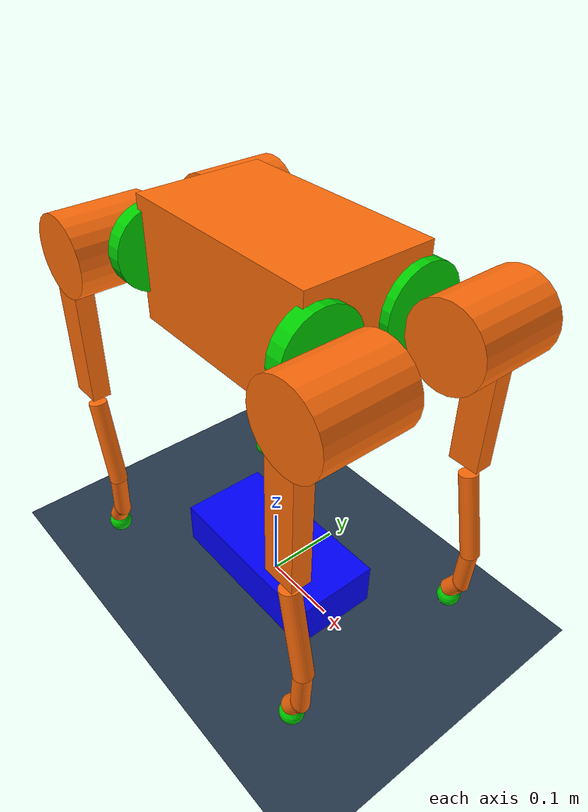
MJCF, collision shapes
<mujoco model="Creeper">
  <compiler angle="radian" meshdir="../meshes/"/>

  <asset>
    <texture type="skybox" builtin="gradient" rgb1="0.3 0.5 0.7" rgb2="0 0 0" width="512" height="512" />
    <texture name="texplane" type="2d" builtin="checker" rgb1=".2 .3 .4" rgb2=".1 0.15 0.2" width="512" height="512" mark="cross" markrgb=".8 .8 .8" />
    <material name="matplane" reflectance="0.3" texture="texplane" texrepeat="1 1" texuniform="true" />
    <mesh name="base" file="base.stl"/>
    <mesh name="FL_hip" file="FL_hip.stl"/>
    <mesh name="FR_hip" file="FR_hip.stl"/>
    <mesh name="RL_hip" file="RL_hip.stl"/>
    <mesh name="RR_hip" file="RR_hip.stl"/>
    <mesh name="FL_thigh" file="FL_thigh.stl"/>
    <mesh name="FR_thigh" file="FR_thigh.stl"/>
    <mesh name="RL_thigh" file="RL_thigh.stl"/>
    <mesh name="RR_thigh" file="RR_thigh.stl"/>
    <mesh name="FL_calf" file="FL_calf.stl"/>
    <mesh name="FR_calf" file="FR_calf.stl"/>
    <mesh name="RL_calf" file="RL_calf.stl"/>
    <mesh name="RR_calf" file="RR_calf.stl"/>
  </asset>

  <worldbody>
    <light directional="true" diffuse=".4 .4 .4" specular="0.1 0.1 0.1" pos="0 0 5.0" dir="0 0 -1" castshadow="false" />
    <light directional="true" diffuse=".6 .6 .6" specular="0.2 0.2 0.2" pos="0 0 4" dir="0 0 -1" />
    <geom name="floor" pos="0 0 0" size="15 15 1" type="plane" material="matplane" margin="0.001" condim="3" friction="1 0.005 0.0001" />
    <!-- floor box under COM to prevent body from lying completely flat -->
    <geom type="box" size="0.12 0.06 0.03" pos="0 0 0.03" group="0" rgba="0 0 1 0.5" solref="0.05 0.9" solimp="0.7 0.9 0.005" margin="0.002"/>

    <body name="trunk" pos="0 0 0.455">
      <site name="imu_sensor_site" pos="0 0 0" />
      <inertial pos="-0.000212244 3.881e-05 -0.020479" quat="1 0 0 0" mass="6" diaginertia="0.011597 0.012694 0.017601"/>
      <joint name="floating_base" type="free" limited="false" actuatorfrclimited="false"/>
      <geom type="mesh" mesh="base" pos="0 0 0" quat="1 0 0 0" contype="0" conaffinity="0" group="1" density="0"/>
      <!-- base primitives: collision box is 270x160x150mm -->
      <geom type="box" size="0.135 0.08 0.075" pos="0 0 -0.01" group="3" rgba="1 0.424 0.039 0.5"/>
      <geom size="0.05 0.01" pos="0.13638 0.065071 0" quat="0.707107 0 0.707107 0" type="cylinder" contype="0" conaffinity="0" group="1" density="0" rgba="0 0.8 0 1"/>
      <geom size="0.05 0.01" pos="0.13638 -0.064929 0" quat="0.707107 0 0.707107 0" type="cylinder" contype="0" conaffinity="0" group="1" density="0" rgba="0 0.8 0 1"/>
      <geom size="0.05 0.01" pos="-0.13682 0.065071 0" quat="0.707107 0 0.707107 0" type="cylinder" contype="0" conaffinity="0" group="1" density="0" rgba="0 0.8 0 1"/>
      <geom size="0.05 0.01" pos="-0.13682 -0.064929 0" quat="0.707107 0 0.707107 0" type="cylinder" contype="0" conaffinity="0" group="1" density="0" rgba="0 0.8 0 1"/>

      <!-- FL (Front-Left) leg -->
      <body name="FL_hip" pos="0.13638 0.065071 -0.01">
        <inertial pos="0.038938 -0.0076948 -6.1766e-05" quat="0.723979 0.0011812 0.000761851 0.689821" mass="0.41199" diaginertia="0.000487082 0.000366209 0.000242969"/>
        <joint name="LF_HAA" pos="0 0 0" axis="1 0 0" range="-1.0472 1.0472" actuatorfrcrange="-23.7 23.7"/>
        <geom type="cylinder" size="0.049 0.055" pos="0.058 0.03 0" quat="0.707107 0.707107 0 0" group="3" rgba="1 0.424 0.039 0.5"/>
        <geom type="mesh" mesh="FL_hip" pos="0 0 0" quat="1 0 0 0" contype="0" conaffinity="0" group="1" density="0"/>
        <body name="FL_thigh" pos="0.058 0.0121 0">
          <inertial pos="-0.00174989 0.0334142 -0.0252666" quat="0.707953 0.0128521 0.00666742 0.706111" mass="0.8" diaginertia="0.00202113 0.00170903 0.000350838"/>
          <joint name="LF_HFE" pos="0 0 0" axis="0 1 0" range="-1.5708 3.4907" actuatorfrcrange="-23.7 23.7"/>
          <geom type="mesh" mesh="FL_thigh" pos="0 0 0" quat="1 0 0 0" contype="0" conaffinity="0" group="1" density="0"/>
          <geom type="box" size="0.075 0.01225 0.02" pos="-0.01 0.057 -0.12" quat="0.707107 0 0.707107 0" group="3" rgba="1 0.424 0.039 0.5"/>
          <body name="FL_calf" pos="0 0.0568 -0.21">
            <inertial pos="0.00604905 6.609e-07 -0.147194" quat="0.707085 -0.00392182 -0.0039196 0.707106" mass="0.195931" diaginertia="0.000764395 0.000756771 3.07087e-05"/>
            <joint name="LF_KFE" pos="0 0 0" axis="0 1 0" range="-2.7227 -0.83776" actuatorfrcrange="-23.7 23.7"/>
            <geom type="mesh" mesh="FL_calf" pos="0 0 0" quat="1 0 0 0" contype="0" conaffinity="0" group="1" density="0"/>
            <geom type="cylinder" size="0.012 0.06" pos="0.005 0 -0.06" quat="0.994493 0 -0.104807 0" group="3" rgba="1 0.424 0.039 0.5"/>
            <!-- calflower + calflower1 (collision fillers) -->
            <geom size="0.011 0.0325" pos="0.015 0 -0.14775" quat="0.999688 0 0.0249974 0" type="cylinder" group="3" rgba="1 0.424 0.039 0.5"/>
            <geom size="0.012 0.015" pos="0.006288 0 -0.18644" quat="0.965093 0 0.261909 0" type="cylinder" group="3" rgba="1 0.424 0.039 0.5"/>
            <body name="LF_FOOT" pos="0 0 -0.211">
              <inertial pos="0 0 0" quat="1 0 0 0" mass="0.01" diaginertia="0.001 0.001 0.001"/>
              <geom size="0.015" pos="0 0 0" type="sphere" contype="0" conaffinity="0" group="1" density="0" rgba="0 0.8 0 1"/>
              <geom name="LF_FOOT_geom" type="sphere" size="0.015" pos="0 0 0" group="2" rgba="1 0.424 0.039 0.5"/>
            </body>
          </body>
        </body>
      </body>

      <!-- FR (Front-Right) leg -->
      <body name="FR_hip" pos="0.13638 -0.064929 -0.01">
        <inertial pos="0.0389378 0.00769486 3.05326e-05" quat="0.689819 -0.00123664 -0.000993928 0.72398" mass="0.411992" diaginertia="0.000487081 0.000366211 0.000242969"/>
        <joint name="RF_HAA" pos="0 0 0" axis="1 0 0" range="-1.0472 1.0472" actuatorfrcrange="-23.7 23.7"/>
        <geom type="cylinder" size="0.049 0.055" pos="0.058 -0.03 0" quat="0.707107 0.707107 0 0" group="3" rgba="1 0.424 0.039 0.5"/>
        <geom type="mesh" mesh="FR_hip" pos="0 0 0" quat="1 0 0 0" contype="0" conaffinity="0" group="1" density="0"/>
        <body name="FR_thigh" pos="0.058 -0.0121 0">
          <inertial pos="-0.00167929 -0.0334156 -0.0252735" quat="0.706224 0.00695102 0.0131335 0.707832" mass="0.8" diaginertia="0.00202213 0.00170909 0.000350777"/>
          <joint name="RF_HFE" pos="0 0 0" axis="0 1 0" range="-1.5708 3.4907" actuatorfrcrange="-23.7 23.7"/>
          <geom type="mesh" mesh="FR_thigh" pos="0 0 0" quat="1 0 0 0" contype="0" conaffinity="0" group="1" density="0"/>
          <geom type="box" size="0.075 0.01225 0.02" pos="-0.01 -0.057 -0.12" quat="0.707107 0 0.707107 0" group="3" rgba="1 0.424 0.039 0.5"/>
          <body name="FR_calf" pos="0 -0.0568 -0.21">
            <inertial pos="0.00604905 -6.628e-07 -0.147194" quat="0.707106 -0.00391962 -0.00392185 0.707085" mass="0.195931" diaginertia="0.000764397 0.000756772 3.07087e-05"/>
            <joint name="RF_KFE" pos="0 0 0" axis="0 1 0" range="-2.7227 -0.83776" actuatorfrcrange="-23.7 23.7"/>
            <geom type="mesh" mesh="FR_calf" pos="0 0 0" quat="1 0 0 0" contype="0" conaffinity="0" group="1" density="0"/>
            <geom type="cylinder" size="0.012 0.06" pos="0.005 0 -0.06" quat="0.994493 0 -0.104807 0" group="3" rgba="1 0.424 0.039 0.5"/>
            <geom size="0.011 0.0325" pos="0.015 0 -0.14775" quat="0.999688 0 0.0249974 0" type="cylinder" group="3" rgba="1 0.424 0.039 0.5"/>
            <geom size="0.012 0.015" pos="0.006288 0 -0.18644" quat="0.965093 0 0.261909 0" type="cylinder" group="3" rgba="1 0.424 0.039 0.5"/>
                        <body name="RF_FOOT" pos="0 0 -0.211">
              <inertial pos="0 0 0" quat="1 0 0 0" mass="0.01" diaginertia="0.001 0.001 0.001"/>
              <geom size="0.015" pos="0 0 0" type="sphere" contype="0" conaffinity="0" group="1" density="0" rgba="0 0.8 0 1"/>
              <geom name="RF_FOOT_geom" type="sphere" size="0.015" pos="0 0 0" group="2" rgba="1 0.424 0.039 0.5"/>
            </body>
          </body>
        </body>
      </body>

      <!-- RL (Rear-Left) leg -->
      <body name="RL_hip" pos="-0.13682 0.065071 -0.01">
        <inertial pos="-0.0389378 -0.00769485 6.17127e-05" quat="0.68982 0.000761844 0.00118118 0.723979" mass="0.411991" diaginertia="0.000487081 0.000366211 0.000242969"/>
        <joint name="LH_HAA" pos="0 0 0" axis="1 0 0" range="-1.0472 1.0472" actuatorfrcrange="-23.7 23.7"/>
        <geom type="cylinder" size="0.049 0.055" pos="-0.058 0.03 0" quat="0.707107 0.707107 0 0" group="3" rgba="1 0.424 0.039 0.5"/>
        <geom type="mesh" mesh="RL_hip" pos="0 0 0" quat="1 0 0 0" contype="0" conaffinity="0" group="1" density="0"/>
        <body name="RL_thigh" pos="-0.058 0.0121 0">
          <inertial pos="-0.00174989 0.0334142 -0.0252666" quat="0.707953 0.0128521 0.00666742 0.706111" mass="0.8" diaginertia="0.00202113 0.00170903 0.000350838"/>
          <joint name="LH_HFE" pos="0 0 0" axis="0 1 0" range="-0.5236 4.5379" actuatorfrcrange="-23.7 23.7"/>
          <geom type="mesh" mesh="RL_thigh" pos="0 0 0" quat="1 0 0 0" contype="0" conaffinity="0" group="1" density="0"/>
          <geom type="box" size="0.075 0.01225 0.02" pos="-0.01 0.057 -0.12" quat="0.707107 0 0.707107 0" group="3" rgba="1 0.424 0.039 0.5"/>
          <body name="RL_calf" pos="0 0.0568 -0.21">
            <inertial pos="0.00604905 6.609e-07 -0.147194" quat="0.707085 -0.00392182 -0.0039196 0.707106" mass="0.195931" diaginertia="0.000764395 0.000756771 3.07087e-05"/>
            <joint name="LH_KFE" pos="0 0 0" axis="0 1 0" range="-2.7227 -0.83776" actuatorfrcrange="-23.7 23.7"/>
            <geom type="mesh" mesh="RL_calf" pos="0 0 0" quat="1 0 0 0" contype="0" conaffinity="0" group="1" density="0"/>
            <geom type="cylinder" size="0.012 0.06" pos="0.005 0 -0.06" quat="0.994493 0 -0.104807 0" group="3" rgba="1 0.424 0.039 0.5"/>
            <geom size="0.011 0.0325" pos="0.015 0 -0.14775" quat="0.999688 0 0.0249974 0" type="cylinder" group="3" rgba="1 0.424 0.039 0.5"/>
            <geom size="0.012 0.015" pos="0.006288 0 -0.18644" quat="0.965093 0 0.261909 0" type="cylinder" group="3" rgba="1 0.424 0.039 0.5"/>
                        <body name="LH_FOOT" pos="0 0 -0.211">
              <inertial pos="0 0 0" quat="1 0 0 0" mass="0.01" diaginertia="0.001 0.001 0.001"/>
              <geom size="0.015" pos="0 0 0" type="sphere" contype="0" conaffinity="0" group="1" density="0" rgba="0 0.8 0 1"/>
              <geom name="LH_FOOT_geom" type="sphere" size="0.015" pos="0 0 0" group="2" rgba="1 0.424 0.039 0.5"/>
            </body>
          </body>
        </body>
      </body>

      <!-- RR (Rear-Right) leg -->
      <body name="RR_hip" pos="-0.13682 -0.064929 -0.01">
        <inertial pos="-0.0389378 0.00769486 -3.05326e-05" quat="0.72398 -0.000993928 -0.00123664 0.689819" mass="0.411992" diaginertia="0.000487081 0.000366211 0.000242969"/>
        <joint name="RH_HAA" pos="0 0 0" axis="1 0 0" range="-1.0472 1.0472" actuatorfrcrange="-23.7 23.7"/>
        <geom type="cylinder" size="0.049 0.055" pos="-0.058 -0.03 0" quat="0.707107 0.707107 0 0" group="3" rgba="1 0.424 0.039 0.5"/>
        <geom type="mesh" mesh="RR_hip" pos="0 0 0" quat="1 0 0 0" contype="0" conaffinity="0" group="1" density="0"/>
        <body name="RR_thigh" pos="-0.058 -0.0121 0">
          <inertial pos="-0.00167929 -0.0334156 -0.0252735" quat="0.706224 0.00695102 0.0131335 0.707832" mass="0.8" diaginertia="0.00202213 0.00170909 0.000350777"/>
          <joint name="RH_HFE" pos="0 0 0" axis="0 1 0" range="-0.5236 4.5379" actuatorfrcrange="-23.7 23.7"/>
          <geom type="mesh" mesh="RR_thigh" pos="0 0 0" quat="1 0 0 0" contype="0" conaffinity="0" group="1" density="0"/>
          <geom type="box" size="0.075 0.01225 0.02" pos="-0.01 -0.057 -0.12" quat="0.707107 0 0.707107 0" group="3" rgba="1 0.424 0.039 0.5"/>
          <body name="RR_calf" pos="0 -0.0568 -0.21">
            <inertial pos="0.00604905 -6.628e-07 -0.147194" quat="0.707106 -0.00391962 -0.00392185 0.707085" mass="0.195931" diaginertia="0.000764397 0.000756772 3.07087e-05"/>
            <joint name="RH_KFE" pos="0 0 0" axis="0 1 0" range="-2.7227 -0.83776" actuatorfrcrange="-23.7 23.7"/>
            <geom type="mesh" mesh="RR_calf" pos="0 0 0" quat="1 0 0 0" contype="0" conaffinity="0" group="1" density="0"/>
            <geom type="cylinder" size="0.012 0.06" pos="0.005 0 -0.06" quat="0.994493 0 -0.104807 0" group="3" rgba="1 0.424 0.039 0.5"/>
            <geom size="0.011 0.0325" pos="0.015 0 -0.14775" quat="0.999688 0 0.0249974 0" type="cylinder" group="3" rgba="1 0.424 0.039 0.5"/>
            <geom size="0.012 0.015" pos="0.006288 0 -0.18644" quat="0.965093 0 0.261909 0" type="cylinder" group="3" rgba="1 0.424 0.039 0.5"/>
                        <body name="RH_FOOT" pos="0 0 -0.211">
              <inertial pos="0 0 0" quat="1 0 0 0" mass="0.01" diaginertia="0.001 0.001 0.001"/>
              <geom size="0.015" pos="0 0 0" type="sphere" contype="0" conaffinity="0" group="1" density="0" rgba="0 0.8 0 1"/>
              <geom name="RH_FOOT_geom" type="sphere" size="0.015" pos="0 0 0" group="2" rgba="1 0.424 0.039 0.5"/>
            </body>
          </body>
        </body>
      </body>
    </body>
  </worldbody>

  <sensor>
    <!-- IMU sensors [0-9] -->
    <framequat name="imu_quat" objtype="site" objname="imu_sensor_site" />
    <gyro name="imu_angvel" site="imu_sensor_site" />
    <accelerometer name="imu_linacc" site="imu_sensor_site" />

    <!-- Joint positions [10-21] (order matches URDF joint order) -->
    <jointpos joint="LF_HAA" />
    <jointpos joint="LF_HFE" />
    <jointpos joint="LF_KFE" />
    <jointpos joint="RF_HAA" />
    <jointpos joint="RF_HFE" />
    <jointpos joint="RF_KFE" />
    <jointpos joint="LH_HAA" />
    <jointpos joint="LH_HFE" />
    <jointpos joint="LH_KFE" />
    <jointpos joint="RH_HAA" />
    <jointpos joint="RH_HFE" />
    <jointpos joint="RH_KFE" />

    <!-- Joint velocities [22-33] -->
    <jointvel joint="LF_HAA" />
    <jointvel joint="LF_HFE" />
    <jointvel joint="LF_KFE" />
    <jointvel joint="RF_HAA" />
    <jointvel joint="RF_HFE" />
    <jointvel joint="RF_KFE" />
    <jointvel joint="LH_HAA" />
    <jointvel joint="LH_HFE" />
    <jointvel joint="LH_KFE" />
    <jointvel joint="RH_HAA" />
    <jointvel joint="RH_HFE" />
    <jointvel joint="RH_KFE" />

    <!-- Base state sensors [34-46] -->
    <framequat name="base_quat" objtype="site" objname="imu_sensor_site" />
    <framepos name="base_pose" objtype="site" objname="imu_sensor_site" />
    <frameangvel name="base_angvel" objtype="site" objname="imu_sensor_site" />
    <framelinvel name="base_linvel" objtype="site" objname="imu_sensor_site" />
  </sensor>

  <actuator>
    <motor name="LF_HAA" joint="LF_HAA" gear="1" ctrlrange="-23.7 23.7" ctrllimited="true"/>
    <motor name="LF_HFE" joint="LF_HFE" gear="1" ctrlrange="-23.7 23.7" ctrllimited="true"/>
    <motor name="LF_KFE" joint="LF_KFE" gear="1" ctrlrange="-23.7 23.7" ctrllimited="true"/>
    <motor name="RF_HAA" joint="RF_HAA" gear="1" ctrlrange="-23.7 23.7" ctrllimited="true"/>
    <motor name="RF_HFE" joint="RF_HFE" gear="1" ctrlrange="-23.7 23.7" ctrllimited="true"/>
    <motor name="RF_KFE" joint="RF_KFE" gear="1" ctrlrange="-23.7 23.7" ctrllimited="true"/>
    <motor name="LH_HAA" joint="LH_HAA" gear="1" ctrlrange="-23.7 23.7" ctrllimited="true"/>
    <motor name="LH_HFE" joint="LH_HFE" gear="1" ctrlrange="-23.7 23.7" ctrllimited="true"/>
    <motor name="LH_KFE" joint="LH_KFE" gear="1" ctrlrange="-23.7 23.7" ctrllimited="true"/>
    <motor name="RH_HAA" joint="RH_HAA" gear="1" ctrlrange="-23.7 23.7" ctrllimited="true"/>
    <motor name="RH_HFE" joint="RH_HFE" gear="1" ctrlrange="-23.7 23.7" ctrllimited="true"/>
    <motor name="RH_KFE" joint="RH_KFE" gear="1" ctrlrange="-23.7 23.7" ctrllimited="true"/>
  </actuator>
</mujoco>
